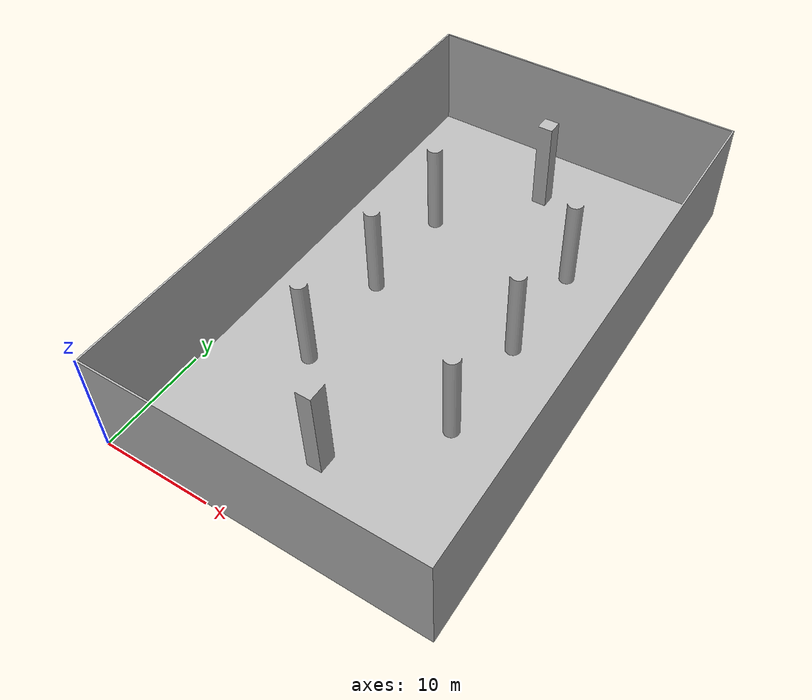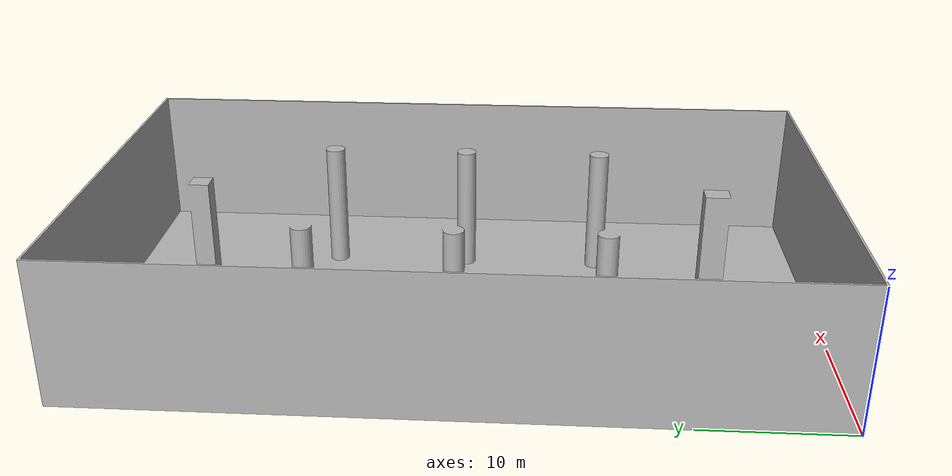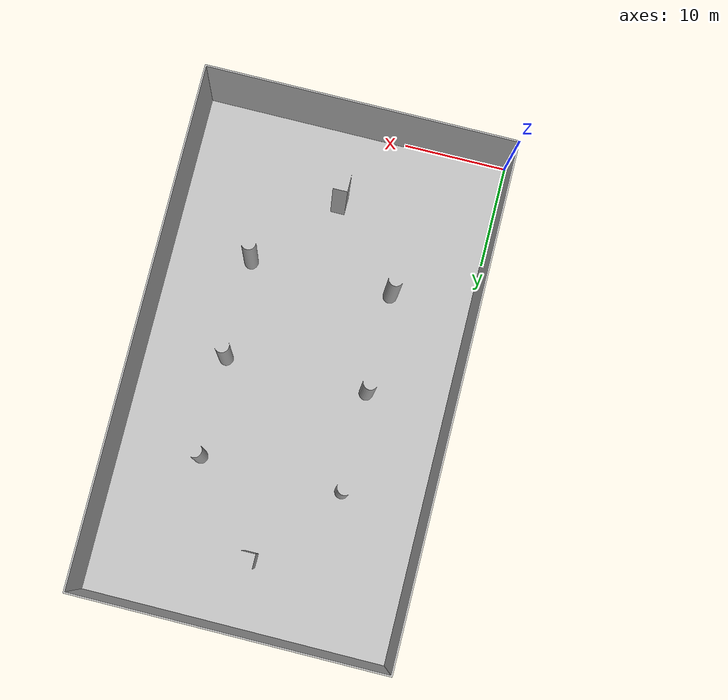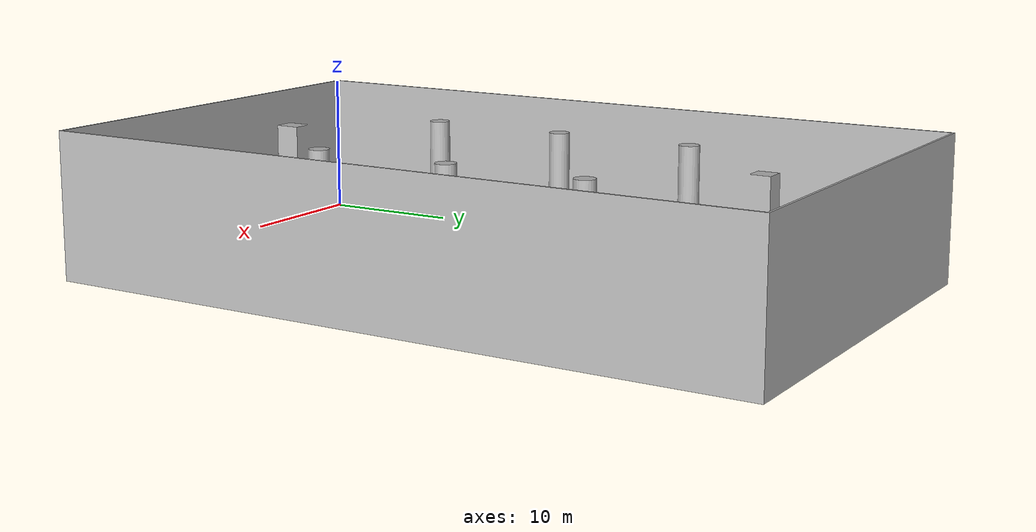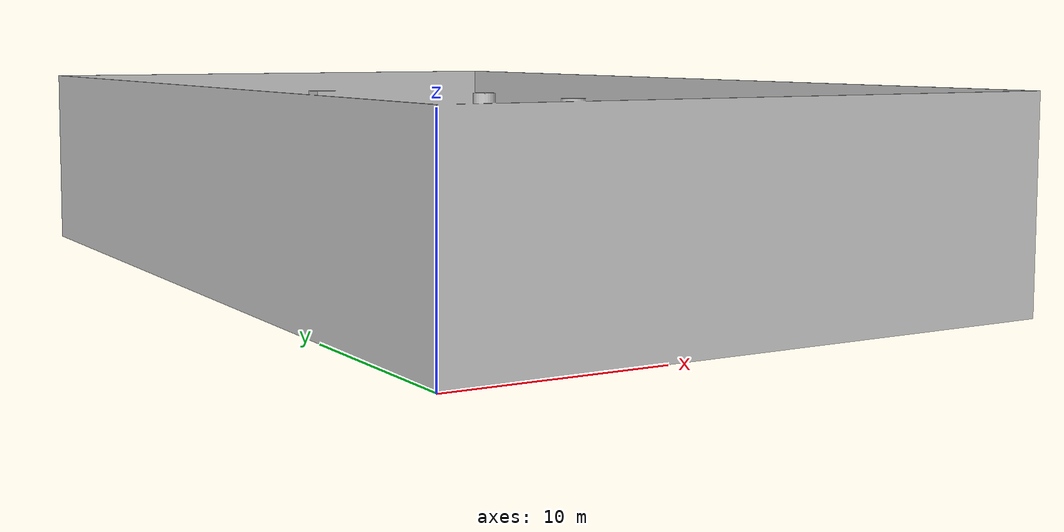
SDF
<?xml version="1.0" ?>
<sdf version="1.5">
  <model name="factory">
    <static>true</static>
    <link name="factory_link">
      <collision name="factory">
        <geometry>
          <mesh>
            <uri>model://factory/meshes/factory.dae</uri>
          </mesh>
        </geometry>
      </collision>
      <visual name="factory">
        <geometry>
          <mesh>
            <uri>model://factory/meshes/factory.dae</uri>
          </mesh>
        </geometry>
      </visual>
    </link>

  </model>
</sdf>
